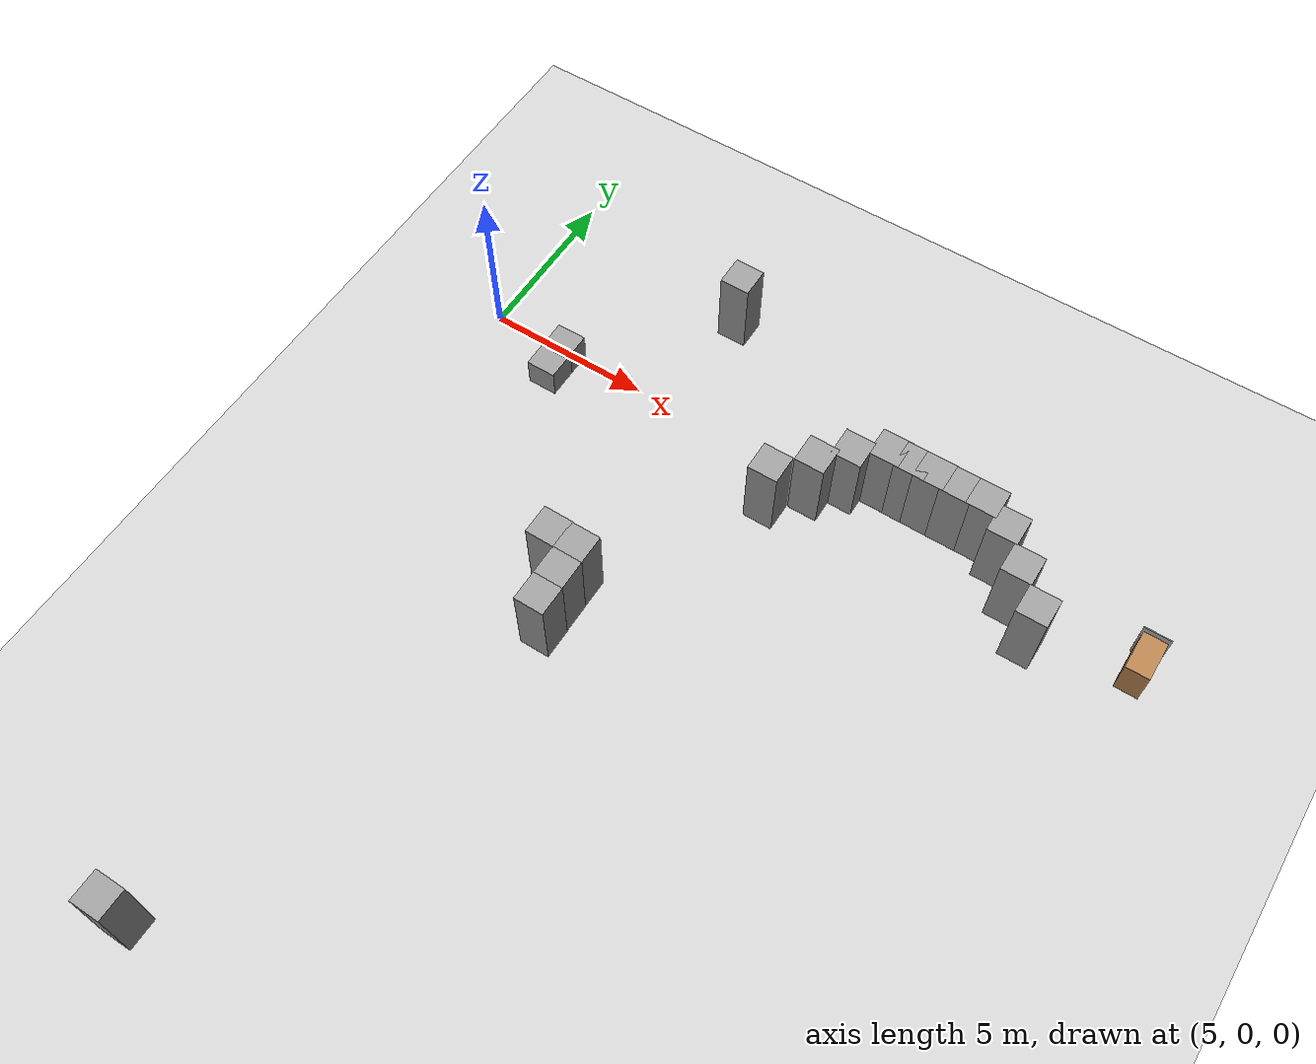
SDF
<sdf version="1.7">
 <world name="default">
  <model name="ground_plane">
   <static>1</static>
   <link name="link">
    <collision name="collision">
     <geometry><plane><normal>0 0 1</normal><size>100 100</size></plane></geometry>
     <surface><friction><ode><mu>100</mu><mu2>50</mu2></ode></friction></surface>
    </collision>
    <visual name="visual">
     <cast_shadows>0</cast_shadows>
     <geometry><plane><normal>0 0 1</normal><size>100 100</size></plane></geometry>
     <material>
      <script><uri>file://media/materials/scripts/gazebo.material</uri><name>Gazebo/Grey</name></script>
     </material>
    </visual>
   </link>
  </model>
  <model name="unit_box_1_clone_0_clone_clone">
   <link name="link">
    <inertial>
     <mass>1</mass>
     <inertia>
      <ixx>0.166667</ixx>
      <ixy>0</ixy>
      <ixz>0</ixz>
      <iyy>0.166667</iyy>
      <iyz>0</iyz>
      <izz>0.166667</izz>
     </inertia>
    </inertial>
    <visual name="visual">
     <geometry><box><size>0.02 0.8 1.4</size></box></geometry>
     <material>
      <script><name>Gazebo/LingXi</name><uri>file://media/materials/scripts/gazebo.material</uri></script>
      <shader type="pixel"><normal_map>__default__</normal_map></shader>
      <ambient>1 1 1 1</ambient>
      <diffuse>0.7 0.7 0.7 1</diffuse>
      <specular>0.01 0.01 0.01 1</specular>
      <emissive>0 0 0 1</emissive>
     </material>
     <pose>0 0 0 0 -0 1.5707</pose>
    </visual>
    <collision name="collision">
     <pose>0 0 0 0 -0 1.5707</pose>
     <geometry><box><size>0.02 0.8 1.4</size></box></geometry>
     <surface>
      <friction>
       <ode><mu>1</mu><mu2>1</mu2><fdir1>0 0 0</fdir1><slip1>0</slip1><slip2>0</slip2></ode>
       <torsional>
        <coefficient>1</coefficient>
        <patch_radius>0</patch_radius>
        <surface_radius>0</surface_radius>
        <use_patch_radius>1</use_patch_radius>
        <ode><slip>0</slip></ode>
       </torsional>
      </friction>
      <bounce><restitution_coefficient>0</restitution_coefficient><threshold>1e+06</threshold></bounce>
      <contact>
       <collide_without_contact>0</collide_without_contact>
       <collide_without_contact_bitmask>1</collide_without_contact_bitmask>
       <collide_bitmask>1</collide_bitmask>
       <ode>
        <soft_cfm>0</soft_cfm>
        <soft_erp>0.2</soft_erp>
        <kp>1e+13</kp>
        <kd>1</kd>
        <max_vel>0.01</max_vel>
        <min_depth>0</min_depth>
       </ode>
       <bullet>
        <split_impulse>1</split_impulse>
        <split_impulse_penetration_threshold>-0.01</split_impulse_penetration_threshold>
        <soft_cfm>0</soft_cfm>
        <soft_erp>0.2</soft_erp>
        <kp>1e+13</kp>
        <kd>1</kd>
       </bullet>
      </contact>
     </surface>
    </collision>
   </link>
   <static>0</static>
   <pose>26.036 -0.003836 0.699998 3e-06 -4e-06 5.1e-05</pose>
  </model>
  <model name="unit_box_0_clone_clone">
   <link name="link">
    <inertial>
     <mass>1</mass>
     <inertia>
      <ixx>0.166667</ixx>
      <ixy>0</ixy>
      <ixz>0</ixz>
      <iyy>0.166667</iyy>
      <iyz>0</iyz>
      <izz>0.166667</izz>
     </inertia>
    </inertial>
    <visual name="visual">
     <geometry><box><size>0.7 1.2 1.2</size></box></geometry>
     <material>
      <script><uri>file://media/materials/scripts/gazebo.material</uri><name>Gazebo/Wood</name></script>
      <shader type="pixel"><normal_map>__default__</normal_map></shader>
      <ambient>1 1 1 1</ambient>
      <diffuse>0.7 0.7 0.7 1</diffuse>
      <specular>0.01 0.01 0.01 1</specular>
      <emissive>0 0 0 1</emissive>
     </material>
    </visual>
    <collision name="collision">
     <geometry><box><size>0.7 1.2 1.2</size></box></geometry>
     <surface>
      <friction>
       <ode><mu>1</mu><mu2>1</mu2><fdir1>0 0 0</fdir1><slip1>0</slip1><slip2>0</slip2></ode>
       <torsional>
        <coefficient>1</coefficient>
        <patch_radius>0</patch_radius>
        <surface_radius>0</surface_radius>
        <use_patch_radius>1</use_patch_radius>
        <ode><slip>0</slip></ode>
       </torsional>
      </friction>
      <bounce><restitution_coefficient>0</restitution_coefficient><threshold>1e+06</threshold></bounce>
      <contact>
       <collide_without_contact>0</collide_without_contact>
       <collide_without_contact_bitmask>1</collide_without_contact_bitmask>
       <collide_bitmask>1</collide_bitmask>
       <ode>
        <soft_cfm>0</soft_cfm>
        <soft_erp>0.2</soft_erp>
        <kp>1e+13</kp>
        <kd>1</kd>
        <max_vel>0.01</max_vel>
        <min_depth>0</min_depth>
       </ode>
       <bullet>
        <split_impulse>1</split_impulse>
        <split_impulse_penetration_threshold>-0.01</split_impulse_penetration_threshold>
        <soft_cfm>0</soft_cfm>
        <soft_erp>0.2</soft_erp>
        <kp>1e+13</kp>
        <kd>1</kd>
       </bullet>
      </contact>
     </surface>
    </collision>
   </link>
   <static>0</static>
   <pose>26.0358 -0.614544 0.6 0 -0 0.000351</pose>
  </model>
  <model name="unit_box">
   <link name="link_clone_0_clone">
    <inertial>
     <mass>1</mass>
     <inertia>
      <ixx>0.166667</ixx>
      <ixy>0</ixy>
      <ixz>0</ixz>
      <iyy>0.166667</iyy>
      <iyz>0</iyz>
      <izz>0.166667</izz>
     </inertia>
    </inertial>
    <pose>0.001814 0.546546 0 0 -0 0</pose>
    <visual name="visual">
     <geometry><box><size>0.9 0.9 0.9</size></box></geometry>
     <material>
      <script><name>Gazebo/Grey</name><uri>file://media/materials/scripts/gazebo.material</uri></script>
      <shader type="pixel"><normal_map>__default__</normal_map></shader>
      <ambient>0.3 0.3 0.3 1</ambient>
      <diffuse>0.7 0.7 0.7 1</diffuse>
      <specular>0.01 0.01 0.01 1</specular>
      <emissive>0 0 0 1</emissive>
     </material>
    </visual>
    <collision name="collision">
     <geometry><box><size>0.9 0.9 0.9</size></box></geometry>
     <surface>
      <friction>
       <ode><mu>1</mu><mu2>1</mu2><fdir1>0 0 0</fdir1><slip1>0</slip1><slip2>0</slip2></ode>
       <torsional>
        <coefficient>1</coefficient>
        <patch_radius>0</patch_radius>
        <surface_radius>0</surface_radius>
        <use_patch_radius>1</use_patch_radius>
        <ode><slip>0</slip></ode>
       </torsional>
      </friction>
      <bounce><restitution_coefficient>0</restitution_coefficient><threshold>1e+06</threshold></bounce>
      <contact>
       <collide_without_contact>0</collide_without_contact>
       <collide_without_contact_bitmask>1</collide_without_contact_bitmask>
       <collide_bitmask>1</collide_bitmask>
       <ode>
        <soft_cfm>0</soft_cfm>
        <soft_erp>0.2</soft_erp>
        <kp>1e+13</kp>
        <kd>1</kd>
        <max_vel>0.01</max_vel>
        <min_depth>0</min_depth>
       </ode>
       <bullet>
        <split_impulse>1</split_impulse>
        <split_impulse_penetration_threshold>-0.01</split_impulse_penetration_threshold>
        <soft_cfm>0</soft_cfm>
        <soft_erp>0.2</soft_erp>
        <kp>1e+13</kp>
        <kd>1</kd>
       </bullet>
      </contact>
     </surface>
    </collision>
   </link>
   <link name="link_clone_0_clone_clone">
    <inertial>
     <mass>1</mass>
     <inertia>
      <ixx>0.166667</ixx>
      <ixy>0</ixy>
      <ixz>0</ixz>
      <iyy>0.166667</iyy>
      <iyz>0</iyz>
      <izz>0.166667</izz>
     </inertia>
    </inertial>
    <pose>0.000695 1.26691 0 0 -0 0</pose>
    <visual name="visual">
     <geometry><box><size>0.9 0.9 0.9</size></box></geometry>
     <material>
      <script><name>Gazebo/Grey</name><uri>file://media/materials/scripts/gazebo.material</uri></script>
      <shader type="pixel"><normal_map>__default__</normal_map></shader>
      <ambient>0.3 0.3 0.3 1</ambient>
      <diffuse>0.7 0.7 0.7 1</diffuse>
      <specular>0.01 0.01 0.01 1</specular>
      <emissive>0 0 0 1</emissive>
     </material>
    </visual>
    <collision name="collision">
     <geometry><box><size>0.9 0.9 0.9</size></box></geometry>
     <surface>
      <friction>
       <ode><mu>1</mu><mu2>1</mu2><fdir1>0 0 0</fdir1><slip1>0</slip1><slip2>0</slip2></ode>
       <torsional>
        <coefficient>1</coefficient>
        <patch_radius>0</patch_radius>
        <surface_radius>0</surface_radius>
        <use_patch_radius>1</use_patch_radius>
        <ode><slip>0</slip></ode>
       </torsional>
      </friction>
      <bounce><restitution_coefficient>0</restitution_coefficient><threshold>1e+06</threshold></bounce>
      <contact>
       <collide_without_contact>0</collide_without_contact>
       <collide_without_contact_bitmask>1</collide_without_contact_bitmask>
       <collide_bitmask>1</collide_bitmask>
       <ode>
        <soft_cfm>0</soft_cfm>
        <soft_erp>0.2</soft_erp>
        <kp>1e+13</kp>
        <kd>1</kd>
        <max_vel>0.01</max_vel>
        <min_depth>0</min_depth>
       </ode>
       <bullet>
        <split_impulse>1</split_impulse>
        <split_impulse_penetration_threshold>-0.01</split_impulse_penetration_threshold>
        <soft_cfm>0</soft_cfm>
        <soft_erp>0.2</soft_erp>
        <kp>1e+13</kp>
        <kd>1</kd>
       </bullet>
      </contact>
     </surface>
    </collision>
   </link>
   <link name="link_clone_0_clone_clone_3_clone_2_clone_21">
    <inertial>
     <mass>1</mass>
     <inertia>
      <ixx>0.166667</ixx>
      <ixy>0</ixy>
      <ixz>0</ixz>
      <iyy>0.166667</iyy>
      <iyz>0</iyz>
      <izz>0.166667</izz>
     </inertia>
    </inertial>
    <pose>15.596 -0.044491 0 0 -0 0</pose>
    <visual name="visual">
     <geometry><box><size>0.9 0.9 4</size></box></geometry>
     <material>
      <script><name>Gazebo/Grey</name><uri>file://media/materials/scripts/gazebo.material</uri></script>
      <shader type="pixel"><normal_map>__default__</normal_map></shader>
      <ambient>0.3 0.3 0.3 1</ambient>
      <diffuse>0.7 0.7 0.7 1</diffuse>
      <specular>0.01 0.01 0.01 1</specular>
      <emissive>0 0 0 1</emissive>
     </material>
    </visual>
    <collision name="collision">
     <geometry><box><size>0.9 0.9 4</size></box></geometry>
     <surface>
      <friction>
       <ode><mu>1</mu><mu2>1</mu2><fdir1>0 0 0</fdir1><slip1>0</slip1><slip2>0</slip2></ode>
       <torsional>
        <coefficient>1</coefficient>
        <patch_radius>0</patch_radius>
        <surface_radius>0</surface_radius>
        <use_patch_radius>1</use_patch_radius>
        <ode><slip>0</slip></ode>
       </torsional>
      </friction>
      <bounce><restitution_coefficient>0</restitution_coefficient><threshold>1e+06</threshold></bounce>
      <contact>
       <collide_without_contact>0</collide_without_contact>
       <collide_without_contact_bitmask>1</collide_without_contact_bitmask>
       <collide_bitmask>1</collide_bitmask>
       <ode>
        <soft_cfm>0</soft_cfm>
        <soft_erp>0.2</soft_erp>
        <kp>1e+13</kp>
        <kd>1</kd>
        <max_vel>0.01</max_vel>
        <min_depth>0</min_depth>
       </ode>
       <bullet>
        <split_impulse>1</split_impulse>
        <split_impulse_penetration_threshold>-0.01</split_impulse_penetration_threshold>
        <soft_cfm>0</soft_cfm>
        <soft_erp>0.2</soft_erp>
        <kp>1e+13</kp>
        <kd>1</kd>
       </bullet>
      </contact>
     </surface>
    </collision>
   </link>
   <link name="link_clone_0_clone_clone_3_clone_2_clone_22">
    <inertial>
     <mass>1</mass>
     <inertia>
      <ixx>0.166667</ixx>
      <ixy>0</ixy>
      <ixz>0</ixz>
      <iyy>0.166667</iyy>
      <iyz>0</iyz>
      <izz>0.166667</izz>
     </inertia>
    </inertial>
    <pose>14.7375 0.847307 0 0 -0 0</pose>
    <visual name="visual">
     <geometry><box><size>0.9 0.9 4</size></box></geometry>
     <material>
      <script><name>Gazebo/Grey</name><uri>file://media/materials/scripts/gazebo.material</uri></script>
      <shader type="pixel"><normal_map>__default__</normal_map></shader>
      <ambient>0.3 0.3 0.3 1</ambient>
      <diffuse>0.7 0.7 0.7 1</diffuse>
      <specular>0.01 0.01 0.01 1</specular>
      <emissive>0 0 0 1</emissive>
     </material>
    </visual>
    <collision name="collision">
     <geometry><box><size>0.9 0.9 4</size></box></geometry>
     <surface>
      <friction>
       <ode><mu>1</mu><mu2>1</mu2><fdir1>0 0 0</fdir1><slip1>0</slip1><slip2>0</slip2></ode>
       <torsional>
        <coefficient>1</coefficient>
        <patch_radius>0</patch_radius>
        <surface_radius>0</surface_radius>
        <use_patch_radius>1</use_patch_radius>
        <ode><slip>0</slip></ode>
       </torsional>
      </friction>
      <bounce><restitution_coefficient>0</restitution_coefficient><threshold>1e+06</threshold></bounce>
      <contact>
       <collide_without_contact>0</collide_without_contact>
       <collide_without_contact_bitmask>1</collide_without_contact_bitmask>
       <collide_bitmask>1</collide_bitmask>
       <ode>
        <soft_cfm>0</soft_cfm>
        <soft_erp>0.2</soft_erp>
        <kp>1e+13</kp>
        <kd>1</kd>
        <max_vel>0.01</max_vel>
        <min_depth>0</min_depth>
       </ode>
       <bullet>
        <split_impulse>1</split_impulse>
        <split_impulse_penetration_threshold>-0.01</split_impulse_penetration_threshold>
        <soft_cfm>0</soft_cfm>
        <soft_erp>0.2</soft_erp>
        <kp>1e+13</kp>
        <kd>1</kd>
       </bullet>
      </contact>
     </surface>
    </collision>
   </link>
   <link name="link_clone_0_clone_clone_3_clone_2_clone_23">
    <inertial>
     <mass>1</mass>
     <inertia>
      <ixx>0.166667</ixx>
      <ixy>0</ixy>
      <ixz>0</ixz>
      <iyy>0.166667</iyy>
      <iyz>0</iyz>
      <izz>0.166667</izz>
     </inertia>
    </inertial>
    <pose>13.9151 1.72247 0 0 -0 0</pose>
    <visual name="visual">
     <geometry><box><size>0.9 0.9 4</size></box></geometry>
     <material>
      <script><name>Gazebo/Grey</name><uri>file://media/materials/scripts/gazebo.material</uri></script>
      <shader type="pixel"><normal_map>__default__</normal_map></shader>
      <ambient>0.3 0.3 0.3 1</ambient>
      <diffuse>0.7 0.7 0.7 1</diffuse>
      <specular>0.01 0.01 0.01 1</specular>
      <emissive>0 0 0 1</emissive>
     </material>
    </visual>
    <collision name="collision">
     <geometry><box><size>0.9 0.9 4</size></box></geometry>
     <surface>
      <friction>
       <ode><mu>1</mu><mu2>1</mu2><fdir1>0 0 0</fdir1><slip1>0</slip1><slip2>0</slip2></ode>
       <torsional>
        <coefficient>1</coefficient>
        <patch_radius>0</patch_radius>
        <surface_radius>0</surface_radius>
        <use_patch_radius>1</use_patch_radius>
        <ode><slip>0</slip></ode>
       </torsional>
      </friction>
      <bounce><restitution_coefficient>0</restitution_coefficient><threshold>1e+06</threshold></bounce>
      <contact>
       <collide_without_contact>0</collide_without_contact>
       <collide_without_contact_bitmask>1</collide_without_contact_bitmask>
       <collide_bitmask>1</collide_bitmask>
       <ode>
        <soft_cfm>0</soft_cfm>
        <soft_erp>0.2</soft_erp>
        <kp>1e+13</kp>
        <kd>1</kd>
        <max_vel>0.01</max_vel>
        <min_depth>0</min_depth>
       </ode>
       <bullet>
        <split_impulse>1</split_impulse>
        <split_impulse_penetration_threshold>-0.01</split_impulse_penetration_threshold>
        <soft_cfm>0</soft_cfm>
        <soft_erp>0.2</soft_erp>
        <kp>1e+13</kp>
        <kd>1</kd>
       </bullet>
      </contact>
     </surface>
    </collision>
   </link>
   <link name="link_clone_0_clone_clone_3_clone_2_clone_24">
    <inertial>
     <mass>1</mass>
     <inertia>
      <ixx>0.166667</ixx>
      <ixy>0</ixy>
      <ixz>0</ixz>
      <iyy>0.166667</iyy>
      <iyz>0</iyz>
      <izz>0.166667</izz>
     </inertia>
    </inertial>
    <pose>13.0875 2.15167 0 0 -0 0</pose>
    <visual name="visual">
     <geometry><box><size>0.9 0.9 4</size></box></geometry>
     <material>
      <script><name>Gazebo/Grey</name><uri>file://media/materials/scripts/gazebo.material</uri></script>
      <shader type="pixel"><normal_map>__default__</normal_map></shader>
      <ambient>0.3 0.3 0.3 1</ambient>
      <diffuse>0.7 0.7 0.7 1</diffuse>
      <specular>0.01 0.01 0.01 1</specular>
      <emissive>0 0 0 1</emissive>
     </material>
    </visual>
    <collision name="collision">
     <geometry><box><size>0.9 0.9 4</size></box></geometry>
     <surface>
      <friction>
       <ode><mu>1</mu><mu2>1</mu2><fdir1>0 0 0</fdir1><slip1>0</slip1><slip2>0</slip2></ode>
       <torsional>
        <coefficient>1</coefficient>
        <patch_radius>0</patch_radius>
        <surface_radius>0</surface_radius>
        <use_patch_radius>1</use_patch_radius>
        <ode><slip>0</slip></ode>
       </torsional>
      </friction>
      <bounce><restitution_coefficient>0</restitution_coefficient><threshold>1e+06</threshold></bounce>
      <contact>
       <collide_without_contact>0</collide_without_contact>
       <collide_without_contact_bitmask>1</collide_without_contact_bitmask>
       <collide_bitmask>1</collide_bitmask>
       <ode>
        <soft_cfm>0</soft_cfm>
        <soft_erp>0.2</soft_erp>
        <kp>1e+13</kp>
        <kd>1</kd>
        <max_vel>0.01</max_vel>
        <min_depth>0</min_depth>
       </ode>
       <bullet>
        <split_impulse>1</split_impulse>
        <split_impulse_penetration_threshold>-0.01</split_impulse_penetration_threshold>
        <soft_cfm>0</soft_cfm>
        <soft_erp>0.2</soft_erp>
        <kp>1e+13</kp>
        <kd>1</kd>
       </bullet>
      </contact>
     </surface>
    </collision>
   </link>
   <link name="link_clone_0_clone_clone_3_clone_2_clone_25">
    <inertial>
     <mass>1</mass>
     <inertia>
      <ixx>0.166667</ixx>
      <ixy>0</ixy>
      <ixz>0</ixz>
      <iyy>0.166667</iyy>
      <iyz>0</iyz>
      <izz>0.166667</izz>
     </inertia>
    </inertial>
    <pose>12.303 2.15067 0 0 -0 0</pose>
    <visual name="visual">
     <geometry><box><size>0.9 0.9 4</size></box></geometry>
     <material>
      <script><name>Gazebo/Grey</name><uri>file://media/materials/scripts/gazebo.material</uri></script>
      <shader type="pixel"><normal_map>__default__</normal_map></shader>
      <ambient>0.3 0.3 0.3 1</ambient>
      <diffuse>0.7 0.7 0.7 1</diffuse>
      <specular>0.01 0.01 0.01 1</specular>
      <emissive>0 0 0 1</emissive>
     </material>
    </visual>
    <collision name="collision">
     <geometry><box><size>0.9 0.9 4</size></box></geometry>
     <surface>
      <friction>
       <ode><mu>1</mu><mu2>1</mu2><fdir1>0 0 0</fdir1><slip1>0</slip1><slip2>0</slip2></ode>
       <torsional>
        <coefficient>1</coefficient>
        <patch_radius>0</patch_radius>
        <surface_radius>0</surface_radius>
        <use_patch_radius>1</use_patch_radius>
        <ode><slip>0</slip></ode>
       </torsional>
      </friction>
      <bounce><restitution_coefficient>0</restitution_coefficient><threshold>1e+06</threshold></bounce>
      <contact>
       <collide_without_contact>0</collide_without_contact>
       <collide_without_contact_bitmask>1</collide_without_contact_bitmask>
       <collide_bitmask>1</collide_bitmask>
       <ode>
        <soft_cfm>0</soft_cfm>
        <soft_erp>0.2</soft_erp>
        <kp>1e+13</kp>
        <kd>1</kd>
        <max_vel>0.01</max_vel>
        <min_depth>0</min_depth>
       </ode>
       <bullet>
        <split_impulse>1</split_impulse>
        <split_impulse_penetration_threshold>-0.01</split_impulse_penetration_threshold>
        <soft_cfm>0</soft_cfm>
        <soft_erp>0.2</soft_erp>
        <kp>1e+13</kp>
        <kd>1</kd>
       </bullet>
      </contact>
     </surface>
    </collision>
   </link>
   <link name="link_clone_0_clone_clone_3_clone_2_clone_26">
    <inertial>
     <mass>1</mass>
     <inertia>
      <ixx>0.166667</ixx>
      <ixy>0</ixy>
      <ixz>0</ixz>
      <iyy>0.166667</iyy>
      <iyz>0</iyz>
      <izz>0.166667</izz>
     </inertia>
    </inertial>
    <pose>11.5113 2.15271 0 0 -0 0</pose>
    <visual name="visual">
     <geometry><box><size>0.9 0.9 4</size></box></geometry>
     <material>
      <script><name>Gazebo/Grey</name><uri>file://media/materials/scripts/gazebo.material</uri></script>
      <shader type="pixel"><normal_map>__default__</normal_map></shader>
      <ambient>0.3 0.3 0.3 1</ambient>
      <diffuse>0.7 0.7 0.7 1</diffuse>
      <specular>0.01 0.01 0.01 1</specular>
      <emissive>0 0 0 1</emissive>
     </material>
    </visual>
    <collision name="collision">
     <geometry><box><size>0.9 0.9 4</size></box></geometry>
     <surface>
      <friction>
       <ode><mu>1</mu><mu2>1</mu2><fdir1>0 0 0</fdir1><slip1>0</slip1><slip2>0</slip2></ode>
       <torsional>
        <coefficient>1</coefficient>
        <patch_radius>0</patch_radius>
        <surface_radius>0</surface_radius>
        <use_patch_radius>1</use_patch_radius>
        <ode><slip>0</slip></ode>
       </torsional>
      </friction>
      <bounce><restitution_coefficient>0</restitution_coefficient><threshold>1e+06</threshold></bounce>
      <contact>
       <collide_without_contact>0</collide_without_contact>
       <collide_without_contact_bitmask>1</collide_without_contact_bitmask>
       <collide_bitmask>1</collide_bitmask>
       <ode>
        <soft_cfm>0</soft_cfm>
        <soft_erp>0.2</soft_erp>
        <kp>1e+13</kp>
        <kd>1</kd>
        <max_vel>0.01</max_vel>
        <min_depth>0</min_depth>
       </ode>
       <bullet>
        <split_impulse>1</split_impulse>
        <split_impulse_penetration_threshold>-0.01</split_impulse_penetration_threshold>
        <soft_cfm>0</soft_cfm>
        <soft_erp>0.2</soft_erp>
        <kp>1e+13</kp>
        <kd>1</kd>
       </bullet>
      </contact>
     </surface>
    </collision>
   </link>
   <link name="link_clone_0_clone_clone_3_clone_2_clone_27">
    <inertial>
     <mass>1</mass>
     <inertia>
      <ixx>0.166667</ixx>
      <ixy>0</ixy>
      <ixz>0</ixz>
      <iyy>0.166667</iyy>
      <iyz>0</iyz>
      <izz>0.166667</izz>
     </inertia>
    </inertial>
    <pose>10.9377 2.1528 0 0 -0 0</pose>
    <visual name="visual">
     <geometry><box><size>0.9 0.9 4</size></box></geometry>
     <material>
      <script><name>Gazebo/Grey</name><uri>file://media/materials/scripts/gazebo.material</uri></script>
      <shader type="pixel"><normal_map>__default__</normal_map></shader>
      <ambient>0.3 0.3 0.3 1</ambient>
      <diffuse>0.7 0.7 0.7 1</diffuse>
      <specular>0.01 0.01 0.01 1</specular>
      <emissive>0 0 0 1</emissive>
     </material>
    </visual>
    <collision name="collision">
     <geometry><box><size>0.9 0.9 4</size></box></geometry>
     <surface>
      <friction>
       <ode><mu>1</mu><mu2>1</mu2><fdir1>0 0 0</fdir1><slip1>0</slip1><slip2>0</slip2></ode>
       <torsional>
        <coefficient>1</coefficient>
        <patch_radius>0</patch_radius>
        <surface_radius>0</surface_radius>
        <use_patch_radius>1</use_patch_radius>
        <ode><slip>0</slip></ode>
       </torsional>
      </friction>
      <bounce><restitution_coefficient>0</restitution_coefficient><threshold>1e+06</threshold></bounce>
      <contact>
       <collide_without_contact>0</collide_without_contact>
       <collide_without_contact_bitmask>1</collide_without_contact_bitmask>
       <collide_bitmask>1</collide_bitmask>
       <ode>
        <soft_cfm>0</soft_cfm>
        <soft_erp>0.2</soft_erp>
        <kp>1e+13</kp>
        <kd>1</kd>
        <max_vel>0.01</max_vel>
        <min_depth>0</min_depth>
       </ode>
       <bullet>
        <split_impulse>1</split_impulse>
        <split_impulse_penetration_threshold>-0.01</split_impulse_penetration_threshold>
        <soft_cfm>0</soft_cfm>
        <soft_erp>0.2</soft_erp>
        <kp>1e+13</kp>
        <kd>1</kd>
       </bullet>
      </contact>
     </surface>
    </collision>
   </link>
   <link name="link_clone_0_clone_clone_3_clone_2_clone_28">
    <inertial>
     <mass>1</mass>
     <inertia>
      <ixx>0.166667</ixx>
      <ixy>0</ixy>
      <ixz>0</ixz>
      <iyy>0.166667</iyy>
      <iyz>0</iyz>
      <izz>0.166667</izz>
     </inertia>
    </inertial>
    <pose>10.1752 2.15883 0 0 -0 0</pose>
    <visual name="visual">
     <geometry><box><size>0.9 0.9 4</size></box></geometry>
     <material>
      <script><name>Gazebo/Grey</name><uri>file://media/materials/scripts/gazebo.material</uri></script>
      <shader type="pixel"><normal_map>__default__</normal_map></shader>
      <ambient>0.3 0.3 0.3 1</ambient>
      <diffuse>0.7 0.7 0.7 1</diffuse>
      <specular>0.01 0.01 0.01 1</specular>
      <emissive>0 0 0 1</emissive>
     </material>
    </visual>
    <collision name="collision">
     <geometry><box><size>0.9 0.9 4</size></box></geometry>
     <surface>
      <friction>
       <ode><mu>1</mu><mu2>1</mu2><fdir1>0 0 0</fdir1><slip1>0</slip1><slip2>0</slip2></ode>
       <torsional>
        <coefficient>1</coefficient>
        <patch_radius>0</patch_radius>
        <surface_radius>0</surface_radius>
        <use_patch_radius>1</use_patch_radius>
        <ode><slip>0</slip></ode>
       </torsional>
      </friction>
      <bounce><restitution_coefficient>0</restitution_coefficient><threshold>1e+06</threshold></bounce>
      <contact>
       <collide_without_contact>0</collide_without_contact>
       <collide_without_contact_bitmask>1</collide_without_contact_bitmask>
       <collide_bitmask>1</collide_bitmask>
       <ode>
        <soft_cfm>0</soft_cfm>
        <soft_erp>0.2</soft_erp>
        <kp>1e+13</kp>
        <kd>1</kd>
        <max_vel>0.01</max_vel>
        <min_depth>0</min_depth>
       </ode>
       <bullet>
        <split_impulse>1</split_impulse>
        <split_impulse_penetration_threshold>-0.01</split_impulse_penetration_threshold>
        <soft_cfm>0</soft_cfm>
        <soft_erp>0.2</soft_erp>
        <kp>1e+13</kp>
        <kd>1</kd>
       </bullet>
      </contact>
     </surface>
    </collision>
   </link>
   <link name="link_clone_0_clone_clone_3_clone_2_clone_29">
    <inertial>
     <mass>1</mass>
     <inertia>
      <ixx>0.166667</ixx>
      <ixy>0</ixy>
      <ixz>0</ixz>
      <iyy>0.166667</iyy>
      <iyz>0</iyz>
      <izz>0.166667</izz>
     </inertia>
    </inertial>
    <pose>9.32821 1.61569 0 0 -0 0</pose>
    <visual name="visual">
     <geometry><box><size>0.9 0.9 4</size></box></geometry>
     <material>
      <script><name>Gazebo/Grey</name><uri>file://media/materials/scripts/gazebo.material</uri></script>
      <shader type="pixel"><normal_map>__default__</normal_map></shader>
      <ambient>0.3 0.3 0.3 1</ambient>
      <diffuse>0.7 0.7 0.7 1</diffuse>
      <specular>0.01 0.01 0.01 1</specular>
      <emissive>0 0 0 1</emissive>
     </material>
    </visual>
    <collision name="collision">
     <geometry><box><size>0.9 0.9 4</size></box></geometry>
     <surface>
      <friction>
       <ode><mu>1</mu><mu2>1</mu2><fdir1>0 0 0</fdir1><slip1>0</slip1><slip2>0</slip2></ode>
       <torsional>
        <coefficient>1</coefficient>
        <patch_radius>0</patch_radius>
        <surface_radius>0</surface_radius>
        <use_patch_radius>1</use_patch_radius>
        <ode><slip>0</slip></ode>
       </torsional>
      </friction>
      <bounce><restitution_coefficient>0</restitution_coefficient><threshold>1e+06</threshold></bounce>
      <contact>
       <collide_without_contact>0</collide_without_contact>
       <collide_without_contact_bitmask>1</collide_without_contact_bitmask>
       <collide_bitmask>1</collide_bitmask>
       <ode>
        <soft_cfm>0</soft_cfm>
        <soft_erp>0.2</soft_erp>
        <kp>1e+13</kp>
        <kd>1</kd>
        <max_vel>0.01</max_vel>
        <min_depth>0</min_depth>
       </ode>
       <bullet>
        <split_impulse>1</split_impulse>
        <split_impulse_penetration_threshold>-0.01</split_impulse_penetration_threshold>
        <soft_cfm>0</soft_cfm>
        <soft_erp>0.2</soft_erp>
        <kp>1e+13</kp>
        <kd>1</kd>
       </bullet>
      </contact>
     </surface>
    </collision>
   </link>
   <link name="link_clone_0_clone_clone_3_clone_2_clone_30">
    <inertial>
     <mass>1</mass>
     <inertia>
      <ixx>0.166667</ixx>
      <ixy>0</ixy>
      <ixz>0</ixz>
      <iyy>0.166667</iyy>
      <iyz>0</iyz>
      <izz>0.166667</izz>
     </inertia>
    </inertial>
    <pose>8.60253 0.907256 0 0 -0 0</pose>
    <visual name="visual">
     <geometry><box><size>0.9 0.9 4</size></box></geometry>
     <material>
      <script><name>Gazebo/Grey</name><uri>file://media/materials/scripts/gazebo.material</uri></script>
      <shader type="pixel"><normal_map>__default__</normal_map></shader>
      <ambient>0.3 0.3 0.3 1</ambient>
      <diffuse>0.7 0.7 0.7 1</diffuse>
      <specular>0.01 0.01 0.01 1</specular>
      <emissive>0 0 0 1</emissive>
     </material>
    </visual>
    <collision name="collision">
     <geometry><box><size>0.9 0.9 4</size></box></geometry>
     <surface>
      <friction>
       <ode><mu>1</mu><mu2>1</mu2><fdir1>0 0 0</fdir1><slip1>0</slip1><slip2>0</slip2></ode>
       <torsional>
        <coefficient>1</coefficient>
        <patch_radius>0</patch_radius>
        <surface_radius>0</surface_radius>
        <use_patch_radius>1</use_patch_radius>
        <ode><slip>0</slip></ode>
       </torsional>
      </friction>
      <bounce><restitution_coefficient>0</restitution_coefficient><threshold>1e+06</threshold></bounce>
      <contact>
       <collide_without_contact>0</collide_without_contact>
       <collide_without_contact_bitmask>1</collide_without_contact_bitmask>
       <collide_bitmask>1</collide_bitmask>
       <ode>
        <soft_cfm>0</soft_cfm>
        <soft_erp>0.2</soft_erp>
        <kp>1e+13</kp>
        <kd>1</kd>
        <max_vel>0.01</max_vel>
        <min_depth>0</min_depth>
       </ode>
       <bullet>
        <split_impulse>1</split_impulse>
        <split_impulse_penetration_threshold>-0.01</split_impulse_penetration_threshold>
        <soft_cfm>0</soft_cfm>
        <soft_erp>0.2</soft_erp>
        <kp>1e+13</kp>
        <kd>1</kd>
       </bullet>
      </contact>
     </surface>
    </collision>
   </link>
   <link name="link_clone_0_clone_clone_3_clone_2_clone_31">
    <inertial>
     <mass>1</mass>
     <inertia>
      <ixx>0.166667</ixx>
      <ixy>0</ixy>
      <ixz>0</ixz>
      <iyy>0.166667</iyy>
      <iyz>0</iyz>
      <izz>0.166667</izz>
     </inertia>
    </inertial>
    <pose>7.67945 0.009107 0 0 -0 0</pose>
    <visual name="visual">
     <geometry><box><size>0.9 0.9 4</size></box></geometry>
     <material>
      <script><name>Gazebo/Grey</name><uri>file://media/materials/scripts/gazebo.material</uri></script>
      <shader type="pixel"><normal_map>__default__</normal_map></shader>
      <ambient>0.3 0.3 0.3 1</ambient>
      <diffuse>0.7 0.7 0.7 1</diffuse>
      <specular>0.01 0.01 0.01 1</specular>
      <emissive>0 0 0 1</emissive>
     </material>
    </visual>
    <collision name="collision">
     <geometry><box><size>0.9 0.9 4</size></box></geometry>
     <surface>
      <friction>
       <ode><mu>1</mu><mu2>1</mu2><fdir1>0 0 0</fdir1><slip1>0</slip1><slip2>0</slip2></ode>
       <torsional>
        <coefficient>1</coefficient>
        <patch_radius>0</patch_radius>
        <surface_radius>0</surface_radius>
        <use_patch_radius>1</use_patch_radius>
        <ode><slip>0</slip></ode>
       </torsional>
      </friction>
      <bounce><restitution_coefficient>0</restitution_coefficient><threshold>1e+06</threshold></bounce>
      <contact>
       <collide_without_contact>0</collide_without_contact>
       <collide_without_contact_bitmask>1</collide_without_contact_bitmask>
       <collide_bitmask>1</collide_bitmask>
       <ode>
        <soft_cfm>0</soft_cfm>
        <soft_erp>0.2</soft_erp>
        <kp>1e+13</kp>
        <kd>1</kd>
        <max_vel>0.01</max_vel>
        <min_depth>0</min_depth>
       </ode>
       <bullet>
        <split_impulse>1</split_impulse>
        <split_impulse_penetration_threshold>-0.01</split_impulse_penetration_threshold>
        <soft_cfm>0</soft_cfm>
        <soft_erp>0.2</soft_erp>
        <kp>1e+13</kp>
        <kd>1</kd>
       </bullet>
      </contact>
     </surface>
    </collision>
   </link>
   <static>0</static>
   <pose>7.51627 -1.49726 0.45 0 -0 0</pose>
  </model>
  <model name="unit_box_clone">
   <link name="link_clone_0_clone_clone_3_clone_2_clone_1_clone_0">
    <inertial>
     <mass>1</mass>
     <inertia>
      <ixx>0.166667</ixx>
      <ixy>0</ixy>
      <ixz>0</ixz>
      <iyy>0.166667</iyy>
      <iyz>0</iyz>
      <izz>0.166667</izz>
     </inertia>
    </inertial>
    <pose>18.7181 23.4797 0 0 -0 0</pose>
    <visual name="visual">
     <geometry><box><size>0.9 0.9 4</size></box></geometry>
     <material>
      <script><name>Gazebo/Grey</name><uri>file://media/materials/scripts/gazebo.material</uri></script>
      <shader type="pixel"><normal_map>__default__</normal_map></shader>
      <ambient>0.3 0.3 0.3 1</ambient>
      <diffuse>0.7 0.7 0.7 1</diffuse>
      <specular>0.01 0.01 0.01 1</specular>
      <emissive>0 0 0 1</emissive>
     </material>
    </visual>
    <collision name="collision">
     <geometry><box><size>0.9 0.9 4</size></box></geometry>
     <surface>
      <friction>
       <ode><mu>1</mu><mu2>1</mu2><fdir1>0 0 0</fdir1><slip1>0</slip1><slip2>0</slip2></ode>
       <torsional>
        <coefficient>1</coefficient>
        <patch_radius>0</patch_radius>
        <surface_radius>0</surface_radius>
        <use_patch_radius>1</use_patch_radius>
        <ode><slip>0</slip></ode>
       </torsional>
      </friction>
      <bounce><restitution_coefficient>0</restitution_coefficient><threshold>1e+06</threshold></bounce>
      <contact>
       <collide_without_contact>0</collide_without_contact>
       <collide_without_contact_bitmask>1</collide_without_contact_bitmask>
       <collide_bitmask>1</collide_bitmask>
       <ode>
        <soft_cfm>0</soft_cfm>
        <soft_erp>0.2</soft_erp>
        <kp>1e+13</kp>
        <kd>1</kd>
        <max_vel>0.01</max_vel>
        <min_depth>0</min_depth>
       </ode>
       <bullet>
        <split_impulse>1</split_impulse>
        <split_impulse_penetration_threshold>-0.01</split_impulse_penetration_threshold>
        <soft_cfm>0</soft_cfm>
        <soft_erp>0.2</soft_erp>
        <kp>1e+13</kp>
        <kd>1</kd>
       </bullet>
      </contact>
     </surface>
    </collision>
   </link>
   <link name="link_clone_0_clone_clone_3_clone_2_clone_21">
    <inertial>
     <mass>1</mass>
     <inertia>
      <ixx>0.166667</ixx>
      <ixy>0</ixy>
      <ixz>0</ixz>
      <iyy>0.166667</iyy>
      <iyz>0</iyz>
      <izz>0.166667</izz>
     </inertia>
    </inertial>
    <pose>15.596 -0.044491 0 0 -0 0</pose>
    <visual name="visual">
     <geometry><box><size>0.9 0.9 4</size></box></geometry>
     <material>
      <script><name>Gazebo/Grey</name><uri>file://media/materials/scripts/gazebo.material</uri></script>
      <shader type="pixel"><normal_map>__default__</normal_map></shader>
      <ambient>0.3 0.3 0.3 1</ambient>
      <diffuse>0.7 0.7 0.7 1</diffuse>
      <specular>0.01 0.01 0.01 1</specular>
      <emissive>0 0 0 1</emissive>
     </material>
    </visual>
    <collision name="collision">
     <geometry><box><size>0.9 0.9 4</size></box></geometry>
     <surface>
      <friction>
       <ode><mu>1</mu><mu2>1</mu2><fdir1>0 0 0</fdir1><slip1>0</slip1><slip2>0</slip2></ode>
       <torsional>
        <coefficient>1</coefficient>
        <patch_radius>0</patch_radius>
        <surface_radius>0</surface_radius>
        <use_patch_radius>1</use_patch_radius>
        <ode><slip>0</slip></ode>
       </torsional>
      </friction>
      <bounce><restitution_coefficient>0</restitution_coefficient><threshold>1e+06</threshold></bounce>
      <contact>
       <collide_without_contact>0</collide_without_contact>
       <collide_without_contact_bitmask>1</collide_without_contact_bitmask>
       <collide_bitmask>1</collide_bitmask>
       <ode>
        <soft_cfm>0</soft_cfm>
        <soft_erp>0.2</soft_erp>
        <kp>1e+13</kp>
        <kd>1</kd>
        <max_vel>0.01</max_vel>
        <min_depth>0</min_depth>
       </ode>
       <bullet>
        <split_impulse>1</split_impulse>
        <split_impulse_penetration_threshold>-0.01</split_impulse_penetration_threshold>
        <soft_cfm>0</soft_cfm>
        <soft_erp>0.2</soft_erp>
        <kp>1e+13</kp>
        <kd>1</kd>
       </bullet>
      </contact>
     </surface>
    </collision>
   </link>
   <link name="link_clone_0_clone_clone_3_clone_2_clone_32">
    <inertial>
     <mass>1</mass>
     <inertia>
      <ixx>0.166667</ixx>
      <ixy>0</ixy>
      <ixz>0</ixz>
      <iyy>0.166667</iyy>
      <iyz>0</iyz>
      <izz>0.166667</izz>
     </inertia>
    </inertial>
    <pose>19.6438 11.8163 0 0 -0 0</pose>
    <visual name="visual">
     <geometry><box><size>0.9 0.9 4</size></box></geometry>
     <material>
      <script><name>Gazebo/Grey</name><uri>file://media/materials/scripts/gazebo.material</uri></script>
      <shader type="pixel"><normal_map>__default__</normal_map></shader>
      <ambient>0.3 0.3 0.3 1</ambient>
      <diffuse>0.7 0.7 0.7 1</diffuse>
      <specular>0.01 0.01 0.01 1</specular>
      <emissive>0 0 0 1</emissive>
     </material>
    </visual>
    <collision name="collision">
     <geometry><box><size>0.9 0.9 4</size></box></geometry>
     <surface>
      <friction>
       <ode><mu>1</mu><mu2>1</mu2><fdir1>0 0 0</fdir1><slip1>0</slip1><slip2>0</slip2></ode>
       <torsional>
        <coefficient>1</coefficient>
        <patch_radius>0</patch_radius>
        <surface_radius>0</surface_radius>
        <use_patch_radius>1</use_patch_radius>
        <ode><slip>0</slip></ode>
       </torsional>
      </friction>
      <bounce><restitution_coefficient>0</restitution_coefficient><threshold>1e+06</threshold></bounce>
      <contact>
       <collide_without_contact>0</collide_without_contact>
       <collide_without_contact_bitmask>1</collide_without_contact_bitmask>
       <collide_bitmask>1</collide_bitmask>
       <ode>
        <soft_cfm>0</soft_cfm>
        <soft_erp>0.2</soft_erp>
        <kp>1e+13</kp>
        <kd>1</kd>
        <max_vel>0.01</max_vel>
        <min_depth>0</min_depth>
       </ode>
       <bullet>
        <split_impulse>1</split_impulse>
        <split_impulse_penetration_threshold>-0.01</split_impulse_penetration_threshold>
        <soft_cfm>0</soft_cfm>
        <soft_erp>0.2</soft_erp>
        <kp>1e+13</kp>
        <kd>1</kd>
       </bullet>
      </contact>
     </surface>
    </collision>
   </link>
   <link name="link_clone_0_clone_clone_3_clone_2_clone_39">
    <inertial>
     <mass>1</mass>
     <inertia>
      <ixx>0.166667</ixx>
      <ixy>0</ixy>
      <ixz>0</ixz>
      <iyy>0.166667</iyy>
      <iyz>0</iyz>
      <izz>0.166667</izz>
     </inertia>
    </inertial>
    <pose>19.6362 12.7063 0 0 -0 0</pose>
    <visual name="visual">
     <geometry><box><size>0.9 0.9 4</size></box></geometry>
     <material>
      <script><name>Gazebo/Grey</name><uri>file://media/materials/scripts/gazebo.material</uri></script>
      <shader type="pixel"><normal_map>__default__</normal_map></shader>
      <ambient>0.3 0.3 0.3 1</ambient>
      <diffuse>0.7 0.7 0.7 1</diffuse>
      <specular>0.01 0.01 0.01 1</specular>
      <emissive>0 0 0 1</emissive>
     </material>
    </visual>
    <collision name="collision">
     <geometry><box><size>0.9 0.9 4</size></box></geometry>
     <surface>
      <friction>
       <ode><mu>1</mu><mu2>1</mu2><fdir1>0 0 0</fdir1><slip1>0</slip1><slip2>0</slip2></ode>
       <torsional>
        <coefficient>1</coefficient>
        <patch_radius>0</patch_radius>
        <surface_radius>0</surface_radius>
        <use_patch_radius>1</use_patch_radius>
        <ode><slip>0</slip></ode>
       </torsional>
      </friction>
      <bounce><restitution_coefficient>0</restitution_coefficient><threshold>1e+06</threshold></bounce>
      <contact>
       <collide_without_contact>0</collide_without_contact>
       <collide_without_contact_bitmask>1</collide_without_contact_bitmask>
       <collide_bitmask>1</collide_bitmask>
       <ode>
        <soft_cfm>0</soft_cfm>
        <soft_erp>0.2</soft_erp>
        <kp>1e+13</kp>
        <kd>1</kd>
        <max_vel>0.01</max_vel>
        <min_depth>0</min_depth>
       </ode>
       <bullet>
        <split_impulse>1</split_impulse>
        <split_impulse_penetration_threshold>-0.01</split_impulse_penetration_threshold>
        <soft_cfm>0</soft_cfm>
        <soft_erp>0.2</soft_erp>
        <kp>1e+13</kp>
        <kd>1</kd>
       </bullet>
      </contact>
     </surface>
    </collision>
   </link>
   <link name="link_clone_0_clone_clone_3_clone_2_clone_40">
    <inertial>
     <mass>1</mass>
     <inertia>
      <ixx>0.166667</ixx>
      <ixy>0</ixy>
      <ixz>0</ixz>
      <iyy>0.166667</iyy>
      <iyz>0</iyz>
      <izz>0.166667</izz>
     </inertia>
    </inertial>
    <pose>19.6349 13.5789 0 0 -0 0</pose>
    <visual name="visual">
     <geometry><box><size>0.9 0.9 4</size></box></geometry>
     <material>
      <script><name>Gazebo/Grey</name><uri>file://media/materials/scripts/gazebo.material</uri></script>
      <shader type="pixel"><normal_map>__default__</normal_map></shader>
      <ambient>0.3 0.3 0.3 1</ambient>
      <diffuse>0.7 0.7 0.7 1</diffuse>
      <specular>0.01 0.01 0.01 1</specular>
      <emissive>0 0 0 1</emissive>
     </material>
    </visual>
    <collision name="collision">
     <geometry><box><size>0.9 0.9 4</size></box></geometry>
     <surface>
      <friction>
       <ode><mu>1</mu><mu2>1</mu2><fdir1>0 0 0</fdir1><slip1>0</slip1><slip2>0</slip2></ode>
       <torsional>
        <coefficient>1</coefficient>
        <patch_radius>0</patch_radius>
        <surface_radius>0</surface_radius>
        <use_patch_radius>1</use_patch_radius>
        <ode><slip>0</slip></ode>
       </torsional>
      </friction>
      <bounce><restitution_coefficient>0</restitution_coefficient><threshold>1e+06</threshold></bounce>
      <contact>
       <collide_without_contact>0</collide_without_contact>
       <collide_without_contact_bitmask>1</collide_without_contact_bitmask>
       <collide_bitmask>1</collide_bitmask>
       <ode>
        <soft_cfm>0</soft_cfm>
        <soft_erp>0.2</soft_erp>
        <kp>1e+13</kp>
        <kd>1</kd>
        <max_vel>0.01</max_vel>
        <min_depth>0</min_depth>
       </ode>
       <bullet>
        <split_impulse>1</split_impulse>
        <split_impulse_penetration_threshold>-0.01</split_impulse_penetration_threshold>
        <soft_cfm>0</soft_cfm>
        <soft_erp>0.2</soft_erp>
        <kp>1e+13</kp>
        <kd>1</kd>
       </bullet>
      </contact>
     </surface>
    </collision>
   </link>
   <link name="link_clone_0_clone_clone_3_clone_2_clone_42">
    <inertial>
     <mass>1</mass>
     <inertia>
      <ixx>0.166667</ixx>
      <ixy>0</ixy>
      <ixz>0</ixz>
      <iyy>0.166667</iyy>
      <iyz>0</iyz>
      <izz>0.166667</izz>
     </inertia>
    </inertial>
    <pose>18.7644 13.5939 0 0 -0 0</pose>
    <visual name="visual">
     <geometry><box><size>0.9 0.9 4</size></box></geometry>
     <material>
      <script><name>Gazebo/Grey</name><uri>file://media/materials/scripts/gazebo.material</uri></script>
      <shader type="pixel"><normal_map>__default__</normal_map></shader>
      <ambient>0.3 0.3 0.3 1</ambient>
      <diffuse>0.7 0.7 0.7 1</diffuse>
      <specular>0.01 0.01 0.01 1</specular>
      <emissive>0 0 0 1</emissive>
     </material>
    </visual>
    <collision name="collision">
     <geometry><box><size>0.9 0.9 4</size></box></geometry>
     <surface>
      <friction>
       <ode><mu>1</mu><mu2>1</mu2><fdir1>0 0 0</fdir1><slip1>0</slip1><slip2>0</slip2></ode>
       <torsional>
        <coefficient>1</coefficient>
        <patch_radius>0</patch_radius>
        <surface_radius>0</surface_radius>
        <use_patch_radius>1</use_patch_radius>
        <ode><slip>0</slip></ode>
       </torsional>
      </friction>
      <bounce><restitution_coefficient>0</restitution_coefficient><threshold>1e+06</threshold></bounce>
      <contact>
       <collide_without_contact>0</collide_without_contact>
       <collide_without_contact_bitmask>1</collide_without_contact_bitmask>
       <collide_bitmask>1</collide_bitmask>
       <ode>
        <soft_cfm>0</soft_cfm>
        <soft_erp>0.2</soft_erp>
        <kp>1e+13</kp>
        <kd>1</kd>
        <max_vel>0.01</max_vel>
        <min_depth>0</min_depth>
       </ode>
       <bullet>
        <split_impulse>1</split_impulse>
        <split_impulse_penetration_threshold>-0.01</split_impulse_penetration_threshold>
        <soft_cfm>0</soft_cfm>
        <soft_erp>0.2</soft_erp>
        <kp>1e+13</kp>
        <kd>1</kd>
       </bullet>
      </contact>
     </surface>
    </collision>
   </link>
   <static>0</static>
   <pose>-7.42908 -19.9148 0.45 0 -0 0.00027</pose>
  </model>
 </world>
</sdf>
